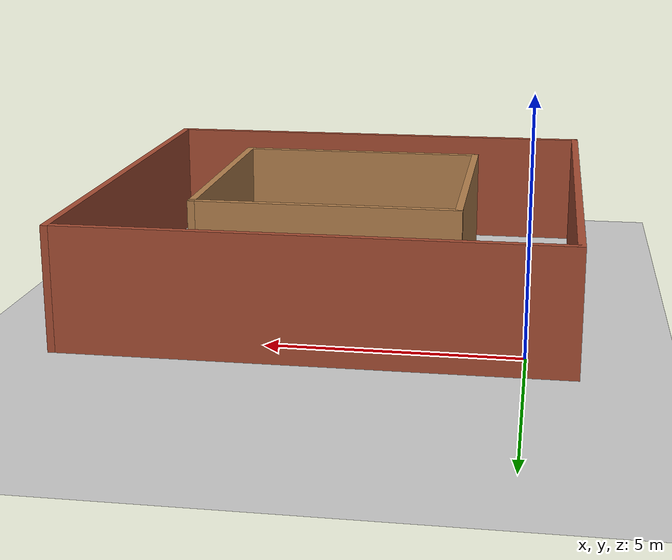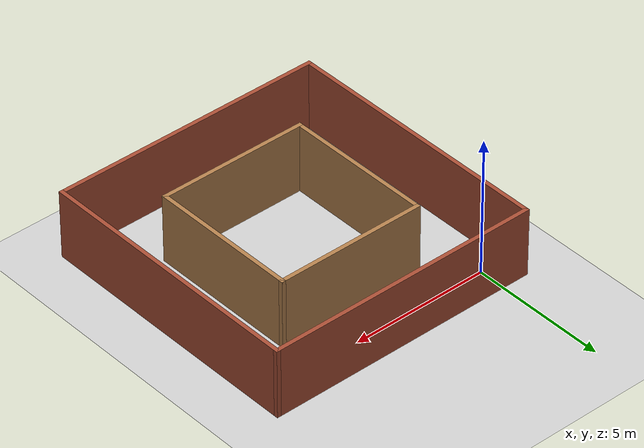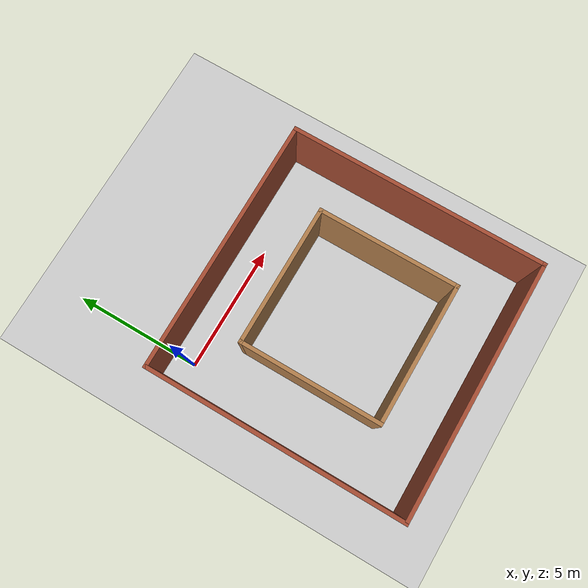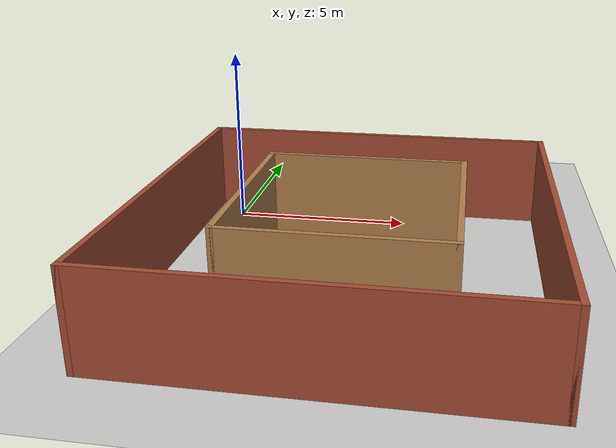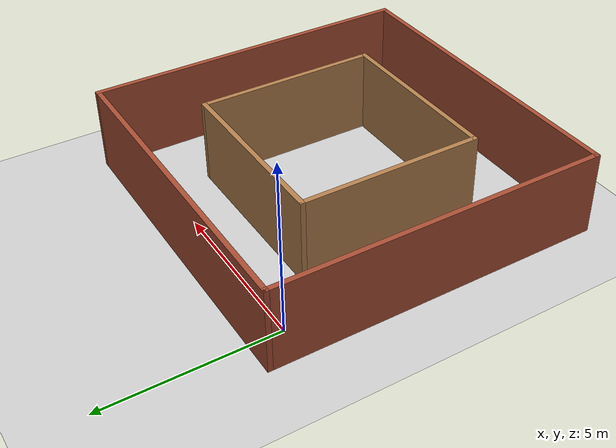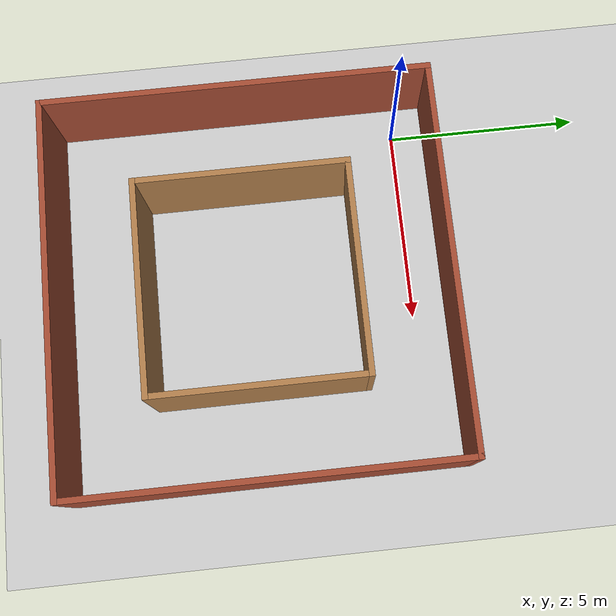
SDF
<sdf version="1.6">
 <world name="default">
  <light name="sun" type="directional">
   <pose>0 0 10 0 -0 0</pose>
   <diffuse>0.8 0.8 0.8 1</diffuse>
   <specular>0.2 0.2 0.2 1</specular>
   <attenuation>
    <range>1000</range>
    <constant>0.9</constant>
    <linear>0.01</linear>
    <quadratic>0.001</quadratic>
   </attenuation>
   <direction>-0.5 0.1 -0.9</direction>
  </light>
  <model name="ground_plane">
   <static>1</static>
   <link name="link">
    <collision name="collision">
     <geometry><plane><normal>0 0 1</normal><size>100 100</size></plane></geometry>
     <surface>
      <contact><collide_bitmask>65535</collide_bitmask></contact>
      <friction><ode><mu>100</mu><mu2>50</mu2></ode></friction>
     </surface>
    </collision>
    <visual name="visual">
     <cast_shadows>0</cast_shadows>
     <geometry><plane><normal>0 0 1</normal><size>100 100</size></plane></geometry>
     <material>
      <script><uri>file://media/materials/scripts/gazebo.material</uri><name>Gazebo/Grey</name></script>
     </material>
    </visual>
   </link>
  </model>
  <gravity>0 0 -9.8</gravity>
  <magnetic_field>6e-06 2.3e-05 -4.2e-05</magnetic_field>
  <atmosphere type="adiabatic"/>
  <physics name="default_physics" default="0" type="ode">
   <max_step_size>0.001</max_step_size>
   <real_time_factor>1</real_time_factor>
   <real_time_update_rate>1000</real_time_update_rate>
  </physics>
  <scene><ambient>0.4 0.4 0.4 1</ambient><background>0.7 0.7 0.7 1</background><shadows>1</shadows></scene>
  <spherical_coordinates>
   <surface_model>EARTH_WGS84</surface_model>
   <latitude_deg>0</latitude_deg>
   <longitude_deg>0</longitude_deg>
   <elevation>0</elevation>
   <heading_deg>0</heading_deg>
  </spherical_coordinates>
  <model name="Square_loop">
   <pose>4 -4 0 0 -0 0</pose>
   <link name="Wall_10">
    <collision name="Wall_10_Collision">
     <geometry><box><size>10 0.15 2.5</size></box></geometry>
     <pose>0 0 1.25 0 -0 0</pose>
    </collision>
    <visual name="Wall_10_Visual">
     <pose>0 0 1.25 0 -0 0</pose>
     <geometry><box><size>10 0.15 2.5</size></box></geometry>
     <material>
      <script><uri>file://media/materials/scripts/gazebo.material</uri><name>Gazebo/Bricks</name></script>
      <ambient>1 1 1 1</ambient>
     </material>
     <meta><layer>0</layer></meta>
    </visual>
    <pose>4.925 0 0 0 -0 1.5708</pose>
   </link>
   <link name="Wall_11">
    <collision name="Wall_11_Collision">
     <geometry><box><size>10 0.15 2.5</size></box></geometry>
     <pose>0 0 1.25 0 -0 0</pose>
    </collision>
    <visual name="Wall_11_Visual">
     <pose>0 0 1.25 0 -0 0</pose>
     <geometry><box><size>10 0.15 2.5</size></box></geometry>
     <material>
      <script><uri>file://media/materials/scripts/gazebo.material</uri><name>Gazebo/Bricks</name></script>
      <ambient>1 1 1 1</ambient>
     </material>
     <meta><layer>0</layer></meta>
    </visual>
    <pose>0 4.925 0 0 -0 3.14159</pose>
   </link>
   <link name="Wall_27">
    <collision name="Wall_27_Collision">
     <geometry><box><size>5.5 0.15 2.5</size></box></geometry>
     <pose>0 0 1.25 0 -0 0</pose>
    </collision>
    <visual name="Wall_27_Visual">
     <pose>0 0 1.25 0 -0 0</pose>
     <geometry><box><size>5.5 0.15 2.5</size></box></geometry>
     <material>
      <script><uri>file://media/materials/scripts/gazebo.material</uri><name>Gazebo/Wood</name></script>
      <ambient>1 1 1 1</ambient>
     </material>
     <meta><layer>0</layer></meta>
    </visual>
    <pose>-2.61194 -0.03993 0 0 -0 -1.5708</pose>
   </link>
   <link name="Wall_29">
    <collision name="Wall_29_Collision">
     <geometry><box><size>5.5 0.15 2.5</size></box></geometry>
     <pose>0 0 1.25 0 -0 0</pose>
    </collision>
    <visual name="Wall_29_Visual">
     <pose>0 0 1.25 0 -0 0</pose>
     <geometry><box><size>5.5 0.15 2.5</size></box></geometry>
     <material>
      <script><uri>file://media/materials/scripts/gazebo.material</uri><name>Gazebo/Wood</name></script>
      <ambient>1 1 1 1</ambient>
     </material>
     <meta><layer>0</layer></meta>
    </visual>
    <pose>0.063061 -2.71493 0 0 -0 0</pose>
   </link>
   <link name="Wall_30">
    <collision name="Wall_30_Collision">
     <geometry><box><size>5.5 0.15 2.5</size></box></geometry>
     <pose>0 0 1.25 0 -0 0</pose>
    </collision>
    <visual name="Wall_30_Visual">
     <pose>0 0 1.25 0 -0 0</pose>
     <geometry><box><size>5.5 0.15 2.5</size></box></geometry>
     <material>
      <script><uri>file://media/materials/scripts/gazebo.material</uri><name>Gazebo/Wood</name></script>
      <ambient>1 1 1 1</ambient>
     </material>
     <meta><layer>0</layer></meta>
    </visual>
    <pose>2.73806 -0.03993 0 0 -0 1.5708</pose>
   </link>
   <link name="Wall_31">
    <collision name="Wall_31_Collision">
     <geometry><box><size>5.5 0.15 2.5</size></box></geometry>
     <pose>0 0 1.25 0 -0 0</pose>
    </collision>
    <visual name="Wall_31_Visual">
     <pose>0 0 1.25 0 -0 0</pose>
     <geometry><box><size>5.5 0.15 2.5</size></box></geometry>
     <material>
      <script><uri>file://media/materials/scripts/gazebo.material</uri><name>Gazebo/Wood</name></script>
      <ambient>1 1 1 1</ambient>
     </material>
     <meta><layer>0</layer></meta>
    </visual>
    <pose>0.063061 2.63507 0 0 -0 3.14159</pose>
   </link>
   <link name="Wall_8">
    <collision name="Wall_8_Collision">
     <geometry><box><size>10 0.15 2.5</size></box></geometry>
     <pose>0 0 1.25 0 -0 0</pose>
    </collision>
    <visual name="Wall_8_Visual">
     <pose>0 0 1.25 0 -0 0</pose>
     <geometry><box><size>10 0.15 2.5</size></box></geometry>
     <material>
      <script><uri>file://media/materials/scripts/gazebo.material</uri><name>Gazebo/Bricks</name></script>
      <ambient>1 1 1 1</ambient>
     </material>
     <meta><layer>0</layer></meta>
    </visual>
    <pose>-4.925 0 0 0 -0 -1.5708</pose>
   </link>
   <link name="Wall_9">
    <collision name="Wall_9_Collision">
     <geometry><box><size>10 0.15 2.5</size></box></geometry>
     <pose>0 0 1.25 0 -0 0</pose>
    </collision>
    <visual name="Wall_9_Visual">
     <pose>0 0 1.25 0 -0 0</pose>
     <geometry><box><size>10 0.15 2.5</size></box></geometry>
     <material>
      <script><uri>file://media/materials/scripts/gazebo.material</uri><name>Gazebo/Bricks</name></script>
      <ambient>1 1 1 1</ambient>
     </material>
     <meta><layer>0</layer></meta>
    </visual>
    <pose>0 -4.925 0 0 -0 0</pose>
   </link>
   <static>1</static>
  </model>
 </world>
</sdf>
